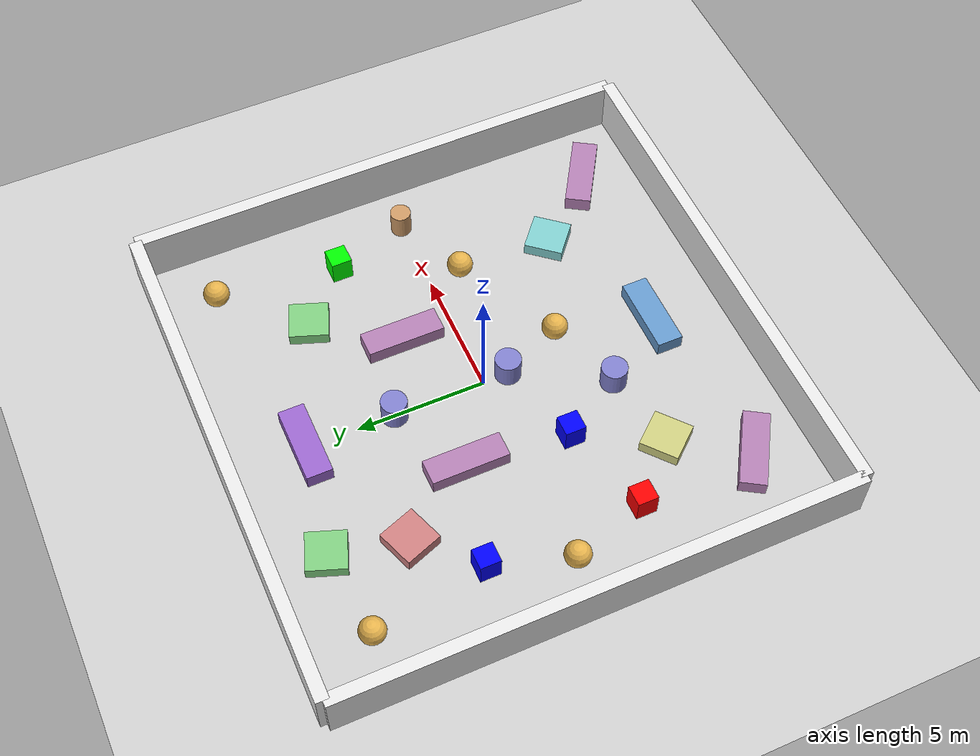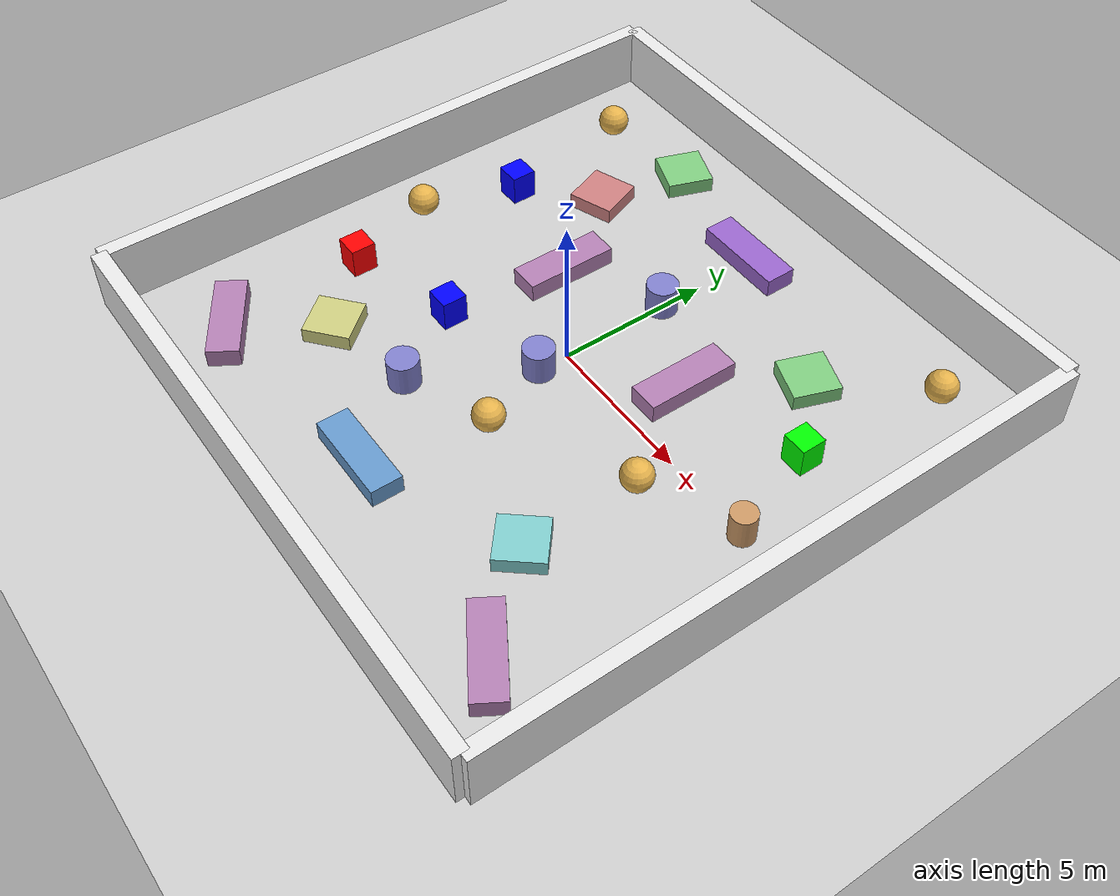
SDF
<?xml version="1.0" ?>
<sdf version='1.9'>
  <world name='default'>
    <plugin name='gz::sim::systems::Physics' filename='gz-sim-physics-system'/>
    <plugin name='gz::sim::systems::UserCommands' filename='gz-sim-user-commands-system'/>
    <plugin name='gz::sim::systems::SceneBroadcaster' filename='gz-sim-scene-broadcaster-system'/>
    <plugin name='gz::sim::systems::Sensors' filename='gz-sim-sensors-system'>
      <render_engine>ogre2</render_engine>
    </plugin>
    <plugin name='gz::sim::systems::Imu' filename='gz-sim-imu-system'/>
    <physics name='default_physics' type='ode'>
      <ode>
        <solver>
          <type>quick</type>
          <iters>50</iters>
          <sor>1.3</sor>
          <use_dynamic_moi_rescaling>false</use_dynamic_moi_rescaling>
        </solver>
        <constraints>
          <cfm>0</cfm>
          <erp>0.20000000000000001</erp>
        </constraints>
      </ode>
      <max_step_size>0.05</max_step_size>
      <real_time_factor>1</real_time_factor>
      <real_time_update_rate>20</real_time_update_rate>
      <gravity>0 0 -9.8</gravity>
    </physics>
    <gravity>0 0 -9.8</gravity>
    <magnetic_field>6e-06 2.3e-05 -4.2e-05</magnetic_field>
    <atmosphere type='adiabatic'/>
    <scene>
      <ambient>0.4 0.4 0.4 1</ambient>
      <background>0.7 0.7 0.7 1</background>
      <shadows>true</shadows>
    </scene>
    <wind/>
    <spherical_coordinates>
      <surface_model>EARTH_WGS84</surface_model>
      <latitude_deg>0</latitude_deg>
      <longitude_deg>0</longitude_deg>
      <elevation>0</elevation>
      <heading_deg>0</heading_deg>
    </spherical_coordinates>
    <gui fullscreen='false'>
      <camera name='user_camera'>
        <pose>15 -15 12 0 0.5 2.4</pose>
        <view_controller>orbit</view_controller>
        <projection_type>perspective</projection_type>
      </camera>
    </gui>
    <model name='ground_plane'>
      <static>true</static>
      <link name='link'>
        <collision name='collision'>
          <geometry>
            <plane>
              <normal>0 0 1</normal>
              <size>50 50</size>
            </plane>
          </geometry>
          <surface>
            <friction>
              <ode>
                <mu>0.80000000000000004</mu>
                <mu2>0.5</mu2>
              </ode>
              <torsional>
                <ode/>
              </torsional>
            </friction>
            <contact>
              <ode/>
            </contact>
            <bounce/>
          </surface>
          <max_contacts>10</max_contacts>
        </collision>
        <visual name='visual'>
          <cast_shadows>false</cast_shadows>
          <geometry>
            <plane>
              <normal>0 0 1</normal>
              <size>50 50</size>
            </plane>
          </geometry>
          <material>
            <ambient>0.8 0.8 0.8 1</ambient>
            <diffuse>0.8 0.8 0.8 1</diffuse>
            <specular>0.8 0.8 0.8 1</specular>
            <emissive>0 0 0 0</emissive>
          </material>
        </visual>
        <self_collide>false</self_collide>
        <enable_wind>false</enable_wind>
        <kinematic>false</kinematic>
        <pose>0 0 0 0 -0 0</pose>
        <inertial>
          <pose>0 0 0 0 -0 0</pose>
          <mass>1</mass>
          <inertia>
            <ixx>1</ixx>
            <ixy>0</ixy>
            <ixz>0</ixz>
            <iyy>1</iyy>
            <iyz>0</iyz>
            <izz>1</izz>
          </inertia>
        </inertial>
      </link>
      <pose>0 0 0 0 -0 0</pose>
      <self_collide>false</self_collide>
    </model>
    <model name='north_wall'>
      <static>true</static>
      <pose>0 10 1 0 -0 0</pose>
      <link name='link'>
        <collision name='collision'>
          <geometry>
            <box>
              <size>20 0.5 2</size>
            </box>
          </geometry>
          <surface>
            <friction>
              <ode>
                <mu>0.80000000000000004</mu>
                <mu2>0.5</mu2>
              </ode>
            </friction>
            <bounce/>
            <contact/>
          </surface>
        </collision>
        <visual name='visual'>
          <geometry>
            <box>
              <size>20 0.5 2</size>
            </box>
          </geometry>
          <material>
            <ambient>0.9 0.9 0.9 1</ambient>
            <diffuse>0.9 0.9 0.9 1</diffuse>
            <specular>0.1 0.1 0.1 1</specular>
          </material>
        </visual>
        <pose>0 0 0 0 -0 0</pose>
        <inertial>
          <pose>0 0 0 0 -0 0</pose>
          <mass>1</mass>
          <inertia>
            <ixx>1</ixx>
            <ixy>0</ixy>
            <ixz>0</ixz>
            <iyy>1</iyy>
            <iyz>0</iyz>
            <izz>1</izz>
          </inertia>
        </inertial>
        <enable_wind>false</enable_wind>
      </link>
      <self_collide>false</self_collide>
    </model>
    <model name='south_wall'>
      <static>true</static>
      <pose>0 -10 1 0 -0 0</pose>
      <link name='link'>
        <collision name='collision'>
          <geometry>
            <box>
              <size>20 0.5 2</size>
            </box>
          </geometry>
          <surface>
            <friction>
              <ode>
                <mu>0.80000000000000004</mu>
                <mu2>0.5</mu2>
              </ode>
            </friction>
            <bounce/>
            <contact/>
          </surface>
        </collision>
        <visual name='visual'>
          <geometry>
            <box>
              <size>20 0.5 2</size>
            </box>
          </geometry>
          <material>
            <ambient>0.9 0.9 0.9 1</ambient>
            <diffuse>0.9 0.9 0.9 1</diffuse>
            <specular>0.1 0.1 0.1 1</specular>
          </material>
        </visual>
        <pose>0 0 0 0 -0 0</pose>
        <inertial>
          <pose>0 0 0 0 -0 0</pose>
          <mass>1</mass>
          <inertia>
            <ixx>1</ixx>
            <ixy>0</ixy>
            <ixz>0</ixz>
            <iyy>1</iyy>
            <iyz>0</iyz>
            <izz>1</izz>
          </inertia>
        </inertial>
        <enable_wind>false</enable_wind>
      </link>
      <self_collide>false</self_collide>
    </model>
    <model name='east_wall'>
      <static>true</static>
      <pose>10 0 1 0 -0 0</pose>
      <link name='link'>
        <collision name='collision'>
          <geometry>
            <box>
              <size>0.5 20 2</size>
            </box>
          </geometry>
          <surface>
            <friction>
              <ode>
                <mu>0.80000000000000004</mu>
                <mu2>0.5</mu2>
              </ode>
            </friction>
            <bounce/>
            <contact/>
          </surface>
        </collision>
        <visual name='visual'>
          <geometry>
            <box>
              <size>0.5 20 2</size>
            </box>
          </geometry>
          <material>
            <ambient>0.9 0.9 0.9 1</ambient>
            <diffuse>0.9 0.9 0.9 1</diffuse>
            <specular>0.1 0.1 0.1 1</specular>
          </material>
        </visual>
        <pose>0 0 0 0 -0 0</pose>
        <inertial>
          <pose>0 0 0 0 -0 0</pose>
          <mass>1</mass>
          <inertia>
            <ixx>1</ixx>
            <ixy>0</ixy>
            <ixz>0</ixz>
            <iyy>1</iyy>
            <iyz>0</iyz>
            <izz>1</izz>
          </inertia>
        </inertial>
        <enable_wind>false</enable_wind>
      </link>
      <self_collide>false</self_collide>
    </model>
    <model name='west_wall'>
      <static>true</static>
      <pose>-10 0 1 0 -0 0</pose>
      <link name='link'>
        <collision name='collision'>
          <geometry>
            <box>
              <size>0.5 20 2</size>
            </box>
          </geometry>
          <surface>
            <friction>
              <ode>
                <mu>0.80000000000000004</mu>
                <mu2>0.5</mu2>
              </ode>
            </friction>
            <bounce/>
            <contact/>
          </surface>
        </collision>
        <visual name='visual'>
          <geometry>
            <box>
              <size>0.5 20 2</size>
            </box>
          </geometry>
          <material>
            <ambient>0.9 0.9 0.9 1</ambient>
            <diffuse>0.9 0.9 0.9 1</diffuse>
            <specular>0.1 0.1 0.1 1</specular>
          </material>
        </visual>
        <pose>0 0 0 0 -0 0</pose>
        <inertial>
          <pose>0 0 0 0 -0 0</pose>
          <mass>1</mass>
          <inertia>
            <ixx>1</ixx>
            <ixy>0</ixy>
            <ixz>0</ixz>
            <iyy>1</iyy>
            <iyz>0</iyz>
            <izz>1</izz>
          </inertia>
        </inertial>
        <enable_wind>false</enable_wind>
      </link>
      <self_collide>false</self_collide>
    </model>
    <model name='central_column'>
      <static>true</static>
      <pose>0 -1 0.5 0 -0 0</pose>
      <link name='link'>
        <collision name='collision'>
          <geometry>
            <cylinder>
              <radius>0.5</radius>
              <length>1</length>
            </cylinder>
          </geometry>
          <surface>
            <friction>
              <ode>
                <mu>0.80000000000000004</mu>
                <mu2>0.5</mu2>
              </ode>
            </friction>
            <bounce/>
            <contact/>
          </surface>
        </collision>
        <visual name='visual'>
          <geometry>
            <cylinder>
              <radius>0.5</radius>
              <length>1</length>
            </cylinder>
          </geometry>
          <material>
            <ambient>0.5 0.5 0.8 1</ambient>
            <diffuse>0.5 0.5 0.8 1</diffuse>
            <specular>0.2 0.2 0.2 1</specular>
          </material>
        </visual>
        <pose>0 0 0 0 -0 0</pose>
        <inertial>
          <pose>0 0 0 0 -0 0</pose>
          <mass>1</mass>
          <inertia>
            <ixx>1</ixx>
            <ixy>0</ixy>
            <ixz>0</ixz>
            <iyy>1</iyy>
            <iyz>0</iyz>
            <izz>1</izz>
          </inertia>
        </inertial>
        <enable_wind>false</enable_wind>
      </link>
      <self_collide>false</self_collide>
    </model>
    <model name='box_obstacle_1'>
      <static>true</static>
      <pose>-5 5 0.25 0 -0 0.35</pose>
      <link name='link'>
        <collision name='collision'>
          <geometry>
            <box>
              <size>1.5 1.5 0.5</size>
            </box>
          </geometry>
          <surface>
            <friction>
              <ode>
                <mu>0.80000000000000004</mu>
                <mu2>0.5</mu2>
              </ode>
            </friction>
            <bounce/>
            <contact/>
          </surface>
        </collision>
        <visual name='visual'>
          <geometry>
            <box>
              <size>1.5 1.5 0.5</size>
            </box>
          </geometry>
          <material>
            <ambient>0.8 0.5 0.5 1</ambient>
            <diffuse>0.8 0.5 0.5 1</diffuse>
            <specular>0.2 0.2 0.2 1</specular>
          </material>
        </visual>
        <pose>0 0 0 0 -0 0</pose>
        <inertial>
          <pose>0 0 0 0 -0 0</pose>
          <mass>1</mass>
          <inertia>
            <ixx>1</ixx>
            <ixy>0</ixy>
            <ixz>0</ixz>
            <iyy>1</iyy>
            <iyz>0</iyz>
            <izz>1</izz>
          </inertia>
        </inertial>
        <enable_wind>false</enable_wind>
      </link>
      <self_collide>false</self_collide>
    </model>
    <model name='box_obstacle_2'>
      <static>true</static>
      <pose>5 5 0.25 0 0 -0.35</pose>
      <link name='link'>
        <collision name='collision'>
          <geometry>
            <box>
              <size>1.5 1.5 0.5</size>
            </box>
          </geometry>
          <surface>
            <friction>
              <ode>
                <mu>0.80000000000000004</mu>
                <mu2>0.5</mu2>
              </ode>
            </friction>
            <bounce/>
            <contact/>
          </surface>
        </collision>
        <visual name='visual'>
          <geometry>
            <box>
              <size>1.5 1.5 0.5</size>
            </box>
          </geometry>
          <material>
            <ambient>0.5 0.8 0.5 1</ambient>
            <diffuse>0.5 0.8 0.5 1</diffuse>
            <specular>0.2 0.2 0.2 1</specular>
          </material>
        </visual>
        <pose>0 0 0 0 -0 0</pose>
        <inertial>
          <pose>0 0 0 0 -0 0</pose>
          <mass>1</mass>
          <inertia>
            <ixx>1</ixx>
            <ixy>0</ixy>
            <ixz>0</ixz>
            <iyy>1</iyy>
            <iyz>0</iyz>
            <izz>1</izz>
          </inertia>
        </inertial>
        <enable_wind>false</enable_wind>
      </link>
      <self_collide>false</self_collide>
    </model>
    <model name='box_obstacle_3'>
      <static>true</static>
      <pose>-5 -5 0.25 0 -0 0.7</pose>
      <link name='link'>
        <collision name='collision'>
          <geometry>
            <box>
              <size>1.5 1.5 0.5</size>
            </box>
          </geometry>
          <surface>
            <friction>
              <ode>
                <mu>0.80000000000000004</mu>
                <mu2>0.5</mu2>
              </ode>
            </friction>
            <bounce/>
            <contact/>
          </surface>
        </collision>
        <visual name='visual'>
          <geometry>
            <box>
              <size>1.5 1.5 0.5</size>
            </box>
          </geometry>
          <material>
            <ambient>0.8 0.8 0.5 1</ambient>
            <diffuse>0.8 0.8 0.5 1</diffuse>
            <specular>0.2 0.2 0.2 1</specular>
          </material>
        </visual>
        <pose>0 0 0 0 -0 0</pose>
        <inertial>
          <pose>0 0 0 0 -0 0</pose>
          <mass>1</mass>
          <inertia>
            <ixx>1</ixx>
            <ixy>0</ixy>
            <ixz>0</ixz>
            <iyy>1</iyy>
            <iyz>0</iyz>
            <izz>1</izz>
          </inertia>
        </inertial>
        <enable_wind>false</enable_wind>
      </link>
      <self_collide>false</self_collide>
    </model>
    <model name='box_obstacle_4'>
      <static>true</static>
      <pose>5 -5 0.25 0 0 -0.7</pose>
      <link name='link'>
        <collision name='collision'>
          <geometry>
            <box>
              <size>1.5 1.5 0.5</size>
            </box>
          </geometry>
          <surface>
            <friction>
              <ode>
                <mu>0.80000000000000004</mu>
                <mu2>0.5</mu2>
              </ode>
            </friction>
            <bounce/>
            <contact/>
          </surface>
        </collision>
        <visual name='visual'>
          <geometry>
            <box>
              <size>1.5 1.5 0.5</size>
            </box>
          </geometry>
          <material>
            <ambient>0.5 0.8 0.8 1</ambient>
            <diffuse>0.5 0.8 0.8 1</diffuse>
            <specular>0.2 0.2 0.2 1</specular>
          </material>
        </visual>
        <pose>0 0 0 0 -0 0</pose>
        <inertial>
          <pose>0 0 0 0 -0 0</pose>
          <mass>1</mass>
          <inertia>
            <ixx>1</ixx>
            <ixy>0</ixy>
            <ixz>0</ixz>
            <iyy>1</iyy>
            <iyz>0</iyz>
            <izz>1</izz>
          </inertia>
        </inertial>
        <enable_wind>false</enable_wind>
      </link>
      <self_collide>false</self_collide>
    </model>
    <model name='cylinder_obstacle'>
      <static>true</static>
      <pose>8 0 0.5 0 -0 0</pose>
      <link name='link'>
        <collision name='collision'>
          <geometry>
            <cylinder>
              <radius>0.40000000000000002</radius>
              <length>1</length>
            </cylinder>
          </geometry>
          <surface>
            <friction>
              <ode>
                <mu>0.80000000000000004</mu>
                <mu2>0.5</mu2>
              </ode>
            </friction>
            <bounce/>
            <contact/>
          </surface>
        </collision>
        <visual name='visual'>
          <geometry>
            <cylinder>
              <radius>0.40000000000000002</radius>
              <length>1</length>
            </cylinder>
          </geometry>
          <material>
            <ambient>0.8 0.6 0.4 1</ambient>
            <diffuse>0.8 0.6 0.4 1</diffuse>
            <specular>0.2 0.2 0.2 1</specular>
          </material>
        </visual>
        <pose>0 0 0 0 -0 0</pose>
        <inertial>
          <pose>0 0 0 0 -0 0</pose>
          <mass>1</mass>
          <inertia>
            <ixx>1</ixx>
            <ixy>0</ixy>
            <ixz>0</ixz>
            <iyy>1</iyy>
            <iyz>0</iyz>
            <izz>1</izz>
          </inertia>
        </inertial>
        <enable_wind>false</enable_wind>
      </link>
      <self_collide>false</self_collide>
    </model>
    <model name='sphere_obstacle'>
      <static>true</static>
      <pose>-8 0 0.5 0 -0 0</pose>
      <link name='link'>
        <collision name='collision'>
          <geometry>
            <sphere>
              <radius>0.5</radius>
            </sphere>
          </geometry>
          <surface>
            <friction>
              <ode>
                <mu>0.80000000000000004</mu>
                <mu2>0.5</mu2>
              </ode>
            </friction>
            <bounce/>
            <contact/>
          </surface>
        </collision>
        <visual name='visual'>
          <geometry>
            <sphere>
              <radius>0.5</radius>
            </sphere>
          </geometry>
          <material>
            <ambient>0.9 0.7 0.3 1</ambient>
            <diffuse>0.9 0.7 0.3 1</diffuse>
            <specular>0.4 0.4 0.4 1</specular>
          </material>
        </visual>
        <pose>0 0 0 0 -0 0</pose>
        <inertial>
          <pose>0 0 0 0 -0 0</pose>
          <mass>1</mass>
          <inertia>
            <ixx>1</ixx>
            <ixy>0</ixy>
            <ixz>0</ixz>
            <iyy>1</iyy>
            <iyz>0</iyz>
            <izz>1</izz>
          </inertia>
        </inertial>
        <enable_wind>false</enable_wind>
      </link>
      <self_collide>false</self_collide>
    </model>
    <model name='north_offset_obstacle'>
      <static>true</static>
      <pose>0 7 0.3 0 -0 0</pose>
      <link name='link'>
        <collision name='collision'>
          <geometry>
            <box>
              <size>3 1 0.6</size>
            </box>
          </geometry>
          <surface>
            <friction>
              <ode>
                <mu>0.80000000000000004</mu>
                <mu2>0.5</mu2>
              </ode>
            </friction>
            <bounce/>
            <contact/>
          </surface>
        </collision>
        <visual name='visual'>
          <geometry>
            <box>
              <size>3 1 0.6</size>
            </box>
          </geometry>
          <material>
            <ambient>0.6 0.4 0.8 1</ambient>
            <diffuse>0.6 0.4 0.8 1</diffuse>
            <specular>0.2 0.2 0.2 1</specular>
          </material>
        </visual>
        <pose>0 0 0 0 -0 0</pose>
        <inertial>
          <pose>0 0 0 0 -0 0</pose>
          <mass>1</mass>
          <inertia>
            <ixx>1</ixx>
            <ixy>0</ixy>
            <ixz>0</ixz>
            <iyy>1</iyy>
            <iyz>0</iyz>
            <izz>1</izz>
          </inertia>
        </inertial>
        <enable_wind>false</enable_wind>
      </link>
      <self_collide>false</self_collide>
    </model>
    <model name='south_offset_obstacle'>
      <static>true</static>
      <pose>0 -7 0.3 0 -0 0</pose>
      <link name='link'>
        <collision name='collision'>
          <geometry>
            <box>
              <size>3 1 0.6</size>
            </box>
          </geometry>
          <surface>
            <friction>
              <ode>
                <mu>0.80000000000000004</mu>
                <mu2>0.5</mu2>
              </ode>
            </friction>
            <bounce/>
            <contact/>
          </surface>
        </collision>
        <visual name='visual'>
          <geometry>
            <box>
              <size>3 1 0.6</size>
            </box>
          </geometry>
          <material>
            <ambient>0.4 0.6 0.8 1</ambient>
            <diffuse>0.4 0.6 0.8 1</diffuse>
            <specular>0.2 0.2 0.2 1</specular>
          </material>
        </visual>
        <pose>0 0 0 0 -0 0</pose>
        <inertial>
          <pose>0 0 0 0 -0 0</pose>
          <mass>1</mass>
          <inertia>
            <ixx>1</ixx>
            <ixy>0</ixy>
            <ixz>0</ixz>
            <iyy>1</iyy>
            <iyz>0</iyz>
            <izz>1</izz>
          </inertia>
        </inertial>
        <enable_wind>false</enable_wind>
      </link>
      <self_collide>false</self_collide>
    </model>
    <model name='passage_left'>
      <static>true</static>
      <pose>-3 2 0.3 0 -0 0</pose>
      <link name='link'>
        <collision name='collision'>
          <geometry>
            <box>
              <size>1 3 0.6</size>
            </box>
          </geometry>
          <surface>
            <friction>
              <ode>
                <mu>0.80000000000000004</mu>
                <mu2>0.5</mu2>
              </ode>
            </friction>
            <bounce/>
            <contact/>
          </surface>
        </collision>
        <visual name='visual'>
          <geometry>
            <box>
              <size>1 3 0.6</size>
            </box>
          </geometry>
          <material>
            <ambient>0.7 0.5 0.7 1</ambient>
            <diffuse>0.7 0.5 0.7 1</diffuse>
            <specular>0.2 0.2 0.2 1</specular>
          </material>
        </visual>
        <pose>0 0 0 0 -0 0</pose>
        <inertial>
          <pose>0 0 0 0 -0 0</pose>
          <mass>1</mass>
          <inertia>
            <ixx>1</ixx>
            <ixy>0</ixy>
            <ixz>0</ixz>
            <iyy>1</iyy>
            <iyz>0</iyz>
            <izz>1</izz>
          </inertia>
        </inertial>
        <enable_wind>false</enable_wind>
      </link>
      <self_collide>false</self_collide>
    </model>
    <model name='passage_right'>
      <static>true</static>
      <pose>3 2 0.3 0 -0 0</pose>
      <link name='link'>
        <collision name='collision'>
          <geometry>
            <box>
              <size>1 3 0.6</size>
            </box>
          </geometry>
          <surface>
            <friction>
              <ode>
                <mu>0.80000000000000004</mu>
                <mu2>0.5</mu2>
              </ode>
            </friction>
            <bounce/>
            <contact/>
          </surface>
        </collision>
        <visual name='visual'>
          <geometry>
            <box>
              <size>1 3 0.6</size>
            </box>
          </geometry>
          <material>
            <ambient>0.7 0.5 0.7 1</ambient>
            <diffuse>0.7 0.5 0.7 1</diffuse>
            <specular>0.2 0.2 0.2 1</specular>
          </material>
        </visual>
        <pose>0 0 0 0 -0 0</pose>
        <inertial>
          <pose>0 0 0 0 -0 0</pose>
          <mass>1</mass>
          <inertia>
            <ixx>1</ixx>
            <ixy>0</ixy>
            <ixz>0</ixz>
            <iyy>1</iyy>
            <iyz>0</iyz>
            <izz>1</izz>
          </inertia>
        </inertial>
        <enable_wind>false</enable_wind>
      </link>
      <self_collide>false</self_collide>
    </model>
    <model name='high_landmark_1'>
      <static>true</static>
      <pose>-7 -3 0.5 0 -0 0</pose>
      <link name='link'>
        <collision name='collision'>
          <geometry>
            <box>
              <size>0.8 0.8 1</size>
            </box>
          </geometry>
          <surface>
            <friction>
              <ode>
                <mu>0.80000000000000004</mu>
                <mu2>0.5</mu2>
              </ode>
            </friction>
            <bounce/>
            <contact/>
          </surface>
        </collision>
        <visual name='visual'>
          <geometry>
            <box>
              <size>0.8 0.8 1</size>
            </box>
          </geometry>
          <material>
            <ambient>1 0 0 1</ambient>
            <diffuse>1 0 0 1</diffuse>
            <specular>0.3 0.3 0.3 1</specular>
          </material>
        </visual>
        <pose>0 0 0 0 -0 0</pose>
        <inertial>
          <pose>0 0 0 0 -0 0</pose>
          <mass>1</mass>
          <inertia>
            <ixx>1</ixx>
            <ixy>0</ixy>
            <ixz>0</ixz>
            <iyy>1</iyy>
            <iyz>0</iyz>
            <izz>1</izz>
          </inertia>
        </inertial>
        <enable_wind>false</enable_wind>
      </link>
      <self_collide>false</self_collide>
    </model>
    <model name='high_landmark_2'>
      <static>true</static>
      <pose>7 3 0.5 0 -0 0</pose>
      <link name='link'>
        <collision name='collision'>
          <geometry>
            <box>
              <size>0.8 0.8 1</size>
            </box>
          </geometry>
          <surface>
            <friction>
              <ode>
                <mu>0.80000000000000004</mu>
                <mu2>0.5</mu2>
              </ode>
            </friction>
            <bounce/>
            <contact/>
          </surface>
        </collision>
        <visual name='visual'>
          <geometry>
            <box>
              <size>0.8 0.8 1</size>
            </box>
          </geometry>
          <material>
            <ambient>0 1 0 1</ambient>
            <diffuse>0 1 0 1</diffuse>
            <specular>0.3 0.3 0.3 1</specular>
          </material>
        </visual>
        <pose>0 0 0 0 -0 0</pose>
        <inertial>
          <pose>0 0 0 0 -0 0</pose>
          <mass>1</mass>
          <inertia>
            <ixx>1</ixx>
            <ixy>0</ixy>
            <ixz>0</ixz>
            <iyy>1</iyy>
            <iyz>0</iyz>
            <izz>1</izz>
          </inertia>
        </inertial>
        <enable_wind>false</enable_wind>
      </link>
      <self_collide>false</self_collide>
    </model>
    <model name='high_landmark_3'>
      <static>true</static>
      <pose>-7 3 0.5 0 -0 0</pose>
      <link name='link'>
        <collision name='collision'>
          <geometry>
            <box>
              <size>0.8 0.8 1</size>
            </box>
          </geometry>
          <surface>
            <friction>
              <ode>
                <mu>0.80000000000000004</mu>
                <mu2>0.5</mu2>
              </ode>
            </friction>
            <bounce/>
            <contact/>
          </surface>
        </collision>
        <visual name='visual'>
          <geometry>
            <box>
              <size>0.8 0.8 1</size>
            </box>
          </geometry>
          <material>
            <ambient>0 0 1 1</ambient>
            <diffuse>0 0 1 1</diffuse>
            <specular>0.3 0.3 0.3 1</specular>
          </material>
        </visual>
        <pose>0 0 0 0 -0 0</pose>
        <inertial>
          <pose>0 0 0 0 -0 0</pose>
          <mass>1</mass>
          <inertia>
            <ixx>1</ixx>
            <ixy>0</ixy>
            <ixz>0</ixz>
            <iyy>1</iyy>
            <iyz>0</iyz>
            <izz>1</izz>
          </inertia>
        </inertial>
        <enable_wind>false</enable_wind>
      </link>
      <self_collide>false</self_collide>
    </model>
    <model name='central_column_1'>
      <static>true</static>
      <pose>0 3.5453 0.5 0 -0 0</pose>
      <link name='link'>
        <collision name='collision'>
          <geometry>
            <cylinder>
              <radius>0.5</radius>
              <length>1</length>
            </cylinder>
          </geometry>
          <surface>
            <friction>
              <ode>
                <mu>0.80000000000000004</mu>
                <mu2>0.5</mu2>
              </ode>
            </friction>
            <bounce/>
            <contact/>
          </surface>
        </collision>
        <visual name='visual'>
          <geometry>
            <cylinder>
              <radius>0.5</radius>
              <length>1</length>
            </cylinder>
          </geometry>
          <material>
            <ambient>0.5 0.5 0.8 1</ambient>
            <diffuse>0.5 0.5 0.8 1</diffuse>
            <specular>0.2 0.2 0.2 1</specular>
          </material>
        </visual>
        <pose>0 0 0 0 -0 0</pose>
        <inertial>
          <pose>0 0 0 0 -0 0</pose>
          <mass>1</mass>
          <inertia>
            <ixx>1</ixx>
            <ixy>0</ixy>
            <ixz>0</ixz>
            <iyy>1</iyy>
            <iyz>0</iyz>
            <izz>1</izz>
          </inertia>
        </inertial>
        <enable_wind>false</enable_wind>
      </link>
      <self_collide>false</self_collide>
    </model>
    <model name='high_landmark_3_1'>
      <static>true</static>
      <pose>-3.41407 -1.9421 0.5 0 -0 0</pose>
      <link name='link'>
        <collision name='collision'>
          <geometry>
            <box>
              <size>0.8 0.8 1</size>
            </box>
          </geometry>
          <surface>
            <friction>
              <ode>
                <mu>0.80000000000000004</mu>
                <mu2>0.5</mu2>
              </ode>
            </friction>
            <bounce/>
            <contact/>
          </surface>
        </collision>
        <visual name='visual'>
          <geometry>
            <box>
              <size>0.8 0.8 1</size>
            </box>
          </geometry>
          <material>
            <ambient>0 0 1 1</ambient>
            <diffuse>0 0 1 1</diffuse>
            <specular>0.3 0.3 0.3 1</specular>
          </material>
        </visual>
        <pose>0 0 0 0 -0 0</pose>
        <inertial>
          <pose>0 0 0 0 -0 0</pose>
          <mass>1</mass>
          <inertia>
            <ixx>1</ixx>
            <ixy>0</ixy>
            <ixz>0</ixz>
            <iyy>1</iyy>
            <iyz>0</iyz>
            <izz>1</izz>
          </inertia>
        </inertial>
        <enable_wind>false</enable_wind>
      </link>
      <self_collide>false</self_collide>
    </model>
    <model name='sphere_obstacle_1'>
      <static>true</static>
      <pose>0.93311 -3.36215 0.5 0 -0 0</pose>
      <link name='link'>
        <collision name='collision'>
          <geometry>
            <sphere>
              <radius>0.5</radius>
            </sphere>
          </geometry>
          <surface>
            <friction>
              <ode>
                <mu>0.80000000000000004</mu>
                <mu2>0.5</mu2>
              </ode>
            </friction>
            <bounce/>
            <contact/>
          </surface>
        </collision>
        <visual name='visual'>
          <geometry>
            <sphere>
              <radius>0.5</radius>
            </sphere>
          </geometry>
          <material>
            <ambient>0.9 0.7 0.3 1</ambient>
            <diffuse>0.9 0.7 0.3 1</diffuse>
            <specular>0.4 0.4 0.4 1</specular>
          </material>
        </visual>
        <pose>0 0 0 0 -0 0</pose>
        <inertial>
          <pose>0 0 0 0 -0 0</pose>
          <mass>1</mass>
          <inertia>
            <ixx>1</ixx>
            <ixy>0</ixy>
            <ixz>0</ixz>
            <iyy>1</iyy>
            <iyz>0</iyz>
            <izz>1</izz>
          </inertia>
        </inertial>
        <enable_wind>false</enable_wind>
      </link>
      <self_collide>false</self_collide>
    </model>
    <model name='sphere_obstacle_2'>
      <static>true</static>
      <pose>5.07454 -1.26918 0.5 0 -0 0</pose>
      <link name='link'>
        <collision name='collision'>
          <geometry>
            <sphere>
              <radius>0.5</radius>
            </sphere>
          </geometry>
          <surface>
            <friction>
              <ode>
                <mu>0.80000000000000004</mu>
                <mu2>0.5</mu2>
              </ode>
            </friction>
            <bounce/>
            <contact/>
          </surface>
        </collision>
        <visual name='visual'>
          <geometry>
            <sphere>
              <radius>0.5</radius>
            </sphere>
          </geometry>
          <material>
            <ambient>0.9 0.7 0.3 1</ambient>
            <diffuse>0.9 0.7 0.3 1</diffuse>
            <specular>0.4 0.4 0.4 1</specular>
          </material>
        </visual>
        <pose>0 0 0 0 -0 0</pose>
        <inertial>
          <pose>0 0 0 0 -0 0</pose>
          <mass>1</mass>
          <inertia>
            <ixx>1</ixx>
            <ixy>0</ixy>
            <ixz>0</ixz>
            <iyy>1</iyy>
            <iyz>0</iyz>
            <izz>1</izz>
          </inertia>
        </inertial>
        <enable_wind>false</enable_wind>
      </link>
      <self_collide>false</self_collide>
    </model>
    <model name='sphere_obstacle_3'>
      <static>true</static>
      <pose>-7.76398 7.50609 0.5 0 -0 0</pose>
      <link name='link'>
        <collision name='collision'>
          <geometry>
            <sphere>
              <radius>0.5</radius>
            </sphere>
          </geometry>
          <surface>
            <friction>
              <ode>
                <mu>0.80000000000000004</mu>
                <mu2>0.5</mu2>
              </ode>
            </friction>
            <bounce/>
            <contact/>
          </surface>
        </collision>
        <visual name='visual'>
          <geometry>
            <sphere>
              <radius>0.5</radius>
            </sphere>
          </geometry>
          <material>
            <ambient>0.9 0.7 0.3 1</ambient>
            <diffuse>0.9 0.7 0.3 1</diffuse>
            <specular>0.4 0.4 0.4 1</specular>
          </material>
        </visual>
        <pose>0 0 0 0 -0 0</pose>
        <inertial>
          <pose>0 0 0 0 -0 0</pose>
          <mass>1</mass>
          <inertia>
            <ixx>1</ixx>
            <ixy>0</ixy>
            <ixz>0</ixz>
            <iyy>1</iyy>
            <iyz>0</iyz>
            <izz>1</izz>
          </inertia>
        </inertial>
        <enable_wind>false</enable_wind>
      </link>
      <self_collide>false</self_collide>
    </model>
    <model name='sphere_obstacle_4'>
      <static>true</static>
      <pose>7.55682 7.79815 0.5 0 -0 0</pose>
      <link name='link'>
        <collision name='collision'>
          <geometry>
            <sphere>
              <radius>0.5</radius>
            </sphere>
          </geometry>
          <surface>
            <friction>
              <ode>
                <mu>0.80000000000000004</mu>
                <mu2>0.5</mu2>
              </ode>
            </friction>
            <bounce/>
            <contact/>
          </surface>
        </collision>
        <visual name='visual'>
          <geometry>
            <sphere>
              <radius>0.5</radius>
            </sphere>
          </geometry>
          <material>
            <ambient>0.9 0.7 0.3 1</ambient>
            <diffuse>0.9 0.7 0.3 1</diffuse>
            <specular>0.4 0.4 0.4 1</specular>
          </material>
        </visual>
        <pose>0 0 0 0 -0 0</pose>
        <inertial>
          <pose>0 0 0 0 -0 0</pose>
          <mass>1</mass>
          <inertia>
            <ixx>1</ixx>
            <ixy>0</ixy>
            <ixz>0</ixz>
            <iyy>1</iyy>
            <iyz>0</iyz>
            <izz>1</izz>
          </inertia>
        </inertial>
        <enable_wind>false</enable_wind>
      </link>
      <self_collide>false</self_collide>
    </model>
    <model name='passage_left_1'>
      <static>true</static>
      <pose>-6.8146 -7.6128 0.3 0 -0 1.0177</pose>
      <link name='link'>
        <collision name='collision'>
          <geometry>
            <box>
              <size>1 3 0.6</size>
            </box>
          </geometry>
          <surface>
            <friction>
              <ode>
                <mu>0.80000000000000004</mu>
                <mu2>0.5</mu2>
              </ode>
            </friction>
            <bounce/>
            <contact/>
          </surface>
        </collision>
        <visual name='visual'>
          <geometry>
            <box>
              <size>1 3 0.6</size>
            </box>
          </geometry>
          <material>
            <ambient>0.7 0.5 0.7 1</ambient>
            <diffuse>0.7 0.5 0.7 1</diffuse>
            <specular>0.2 0.2 0.2 1</specular>
          </material>
        </visual>
        <pose>0 0 0 0 -0 0</pose>
        <inertial>
          <pose>0 0 0 0 -0 0</pose>
          <mass>1</mass>
          <inertia>
            <ixx>1</ixx>
            <ixy>0</ixy>
            <ixz>0</ixz>
            <iyy>1</iyy>
            <iyz>0</iyz>
            <izz>1</izz>
          </inertia>
        </inertial>
        <enable_wind>false</enable_wind>
      </link>
      <self_collide>false</self_collide>
    </model>
    <model name='passage_left_1_1'>
      <static>true</static>
      <pose>7.31616 -7.59131 0.3 0 -0 1.0177</pose>
      <link name='link'>
        <collision name='collision'>
          <geometry>
            <box>
              <size>1 3 0.6</size>
            </box>
          </geometry>
          <surface>
            <friction>
              <ode>
                <mu>0.80000000000000004</mu>
                <mu2>0.5</mu2>
              </ode>
            </friction>
            <bounce/>
            <contact/>
          </surface>
        </collision>
        <visual name='visual'>
          <geometry>
            <box>
              <size>1 3 0.6</size>
            </box>
          </geometry>
          <material>
            <ambient>0.7 0.5 0.7 1</ambient>
            <diffuse>0.7 0.5 0.7 1</diffuse>
            <specular>0.2 0.2 0.2 1</specular>
          </material>
        </visual>
        <pose>0 0 0 0 -0 0</pose>
        <inertial>
          <pose>0 0 0 0 -0 0</pose>
          <mass>1</mass>
          <inertia>
            <ixx>1</ixx>
            <ixy>0</ixy>
            <ixz>0</ixz>
            <iyy>1</iyy>
            <iyz>0</iyz>
            <izz>1</izz>
          </inertia>
        </inertial>
        <enable_wind>false</enable_wind>
      </link>
      <self_collide>false</self_collide>
    </model>
    <model name='box_obstacle_2_1'>
      <static>true</static>
      <pose>-4.34427 7.85947 0.25 0 0 -0.35</pose>
      <link name='link'>
        <collision name='collision'>
          <geometry>
            <box>
              <size>1.5 1.5 0.5</size>
            </box>
          </geometry>
          <surface>
            <friction>
              <ode>
                <mu>0.80000000000000004</mu>
                <mu2>0.5</mu2>
              </ode>
            </friction>
            <bounce/>
            <contact/>
          </surface>
        </collision>
        <visual name='visual'>
          <geometry>
            <box>
              <size>1.5 1.5 0.5</size>
            </box>
          </geometry>
          <material>
            <ambient>0.5 0.8 0.5 1</ambient>
            <diffuse>0.5 0.8 0.5 1</diffuse>
            <specular>0.2 0.2 0.2 1</specular>
          </material>
        </visual>
        <pose>0 0 0 0 -0 0</pose>
        <inertial>
          <pose>0 0 0 0 -0 0</pose>
          <mass>1</mass>
          <inertia>
            <ixx>1</ixx>
            <ixy>0</ixy>
            <ixz>0</ixz>
            <iyy>1</iyy>
            <iyz>0</iyz>
            <izz>1</izz>
          </inertia>
        </inertial>
        <enable_wind>false</enable_wind>
      </link>
      <self_collide>false</self_collide>
    </model>
    <model name='central_column_2'>
      <static>true</static>
      <pose>-1.92321 -4.42284 0.5 0 -0 0</pose>
      <link name='link'>
        <collision name='collision'>
          <geometry>
            <cylinder>
              <radius>0.5</radius>
              <length>1</length>
            </cylinder>
          </geometry>
          <surface>
            <friction>
              <ode>
                <mu>0.80000000000000004</mu>
                <mu2>0.5</mu2>
              </ode>
            </friction>
            <bounce/>
            <contact/>
          </surface>
        </collision>
        <visual name='visual'>
          <geometry>
            <cylinder>
              <radius>0.5</radius>
              <length>1</length>
            </cylinder>
          </geometry>
          <material>
            <ambient>0.5 0.5 0.8 1</ambient>
            <diffuse>0.5 0.5 0.8 1</diffuse>
            <specular>0.2 0.2 0.2 1</specular>
          </material>
        </visual>
        <pose>0 0 0 0 -0 0</pose>
        <inertial>
          <pose>0 0 0 0 -0 0</pose>
          <mass>1</mass>
          <inertia>
            <ixx>1</ixx>
            <ixy>0</ixy>
            <ixz>0</ixz>
            <iyy>1</iyy>
            <iyz>0</iyz>
            <izz>1</izz>
          </inertia>
        </inertial>
        <enable_wind>false</enable_wind>
      </link>
      <self_collide>false</self_collide>
    </model>
    <light name='sun' type='directional'>
      <pose>5 5 10 0 -0 0</pose>
      <cast_shadows>true</cast_shadows>
      <intensity>1</intensity>
      <direction>-0.5 0.1 -0.9</direction>
      <diffuse>0.8 0.8 0.8 1</diffuse>
      <specular>0.2 0.2 0.2 1</specular>
      <attenuation>
        <range>1000</range>
        <linear>0.01</linear>
        <constant>0.90000000000000002</constant>
        <quadratic>0.001</quadratic>
      </attenuation>
      <spot>
        <inner_angle>0</inner_angle>
        <outer_angle>0</outer_angle>
        <falloff>0</falloff>
      </spot>
    </light>
    <light name='ambient_light' type='directional'>
      <pose>0 0 5 0 -0 0</pose>
      <cast_shadows>false</cast_shadows>
      <intensity>1</intensity>
      <direction>0 0 -1</direction>
      <diffuse>0.5 0.5 0.5 1</diffuse>
      <specular>0.1 0.1 0.1 1</specular>
      <attenuation>
        <range>10</range>
        <linear>1</linear>
        <constant>1</constant>
        <quadratic>0</quadratic>
      </attenuation>
      <spot>
        <inner_angle>0</inner_angle>
        <outer_angle>0</outer_angle>
        <falloff>0</falloff>
      </spot>
    </light>
  </world>
</sdf>
